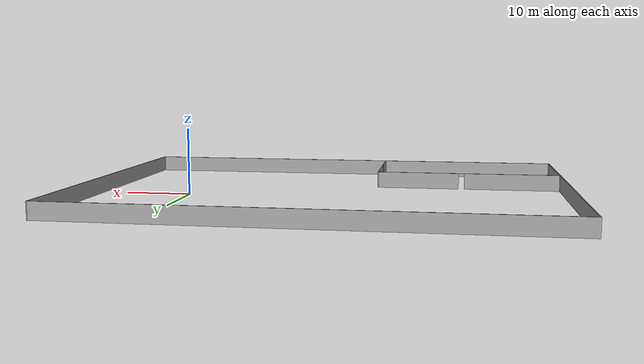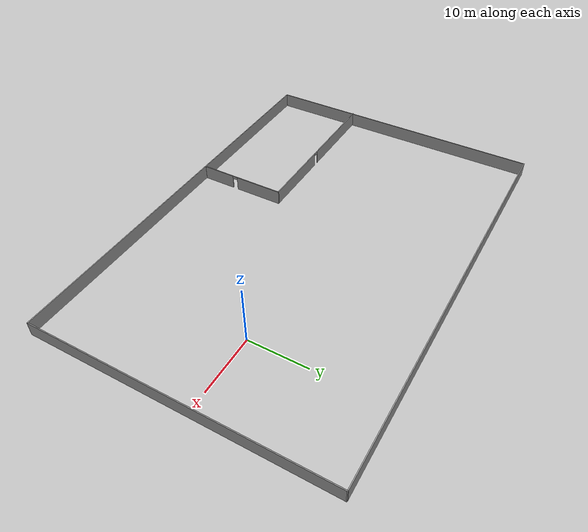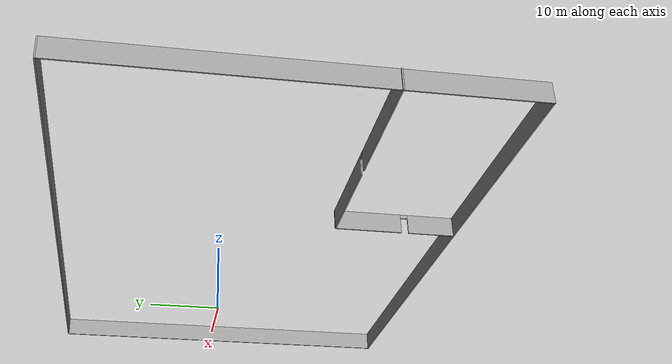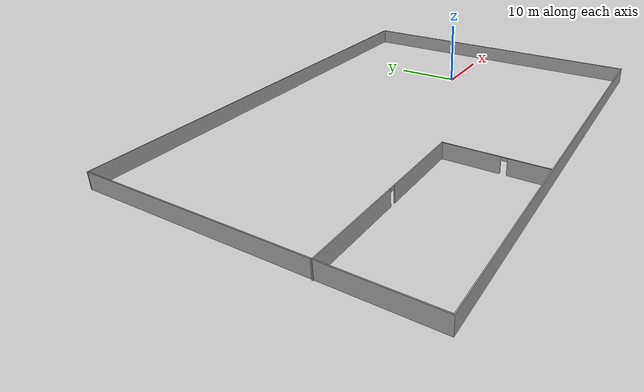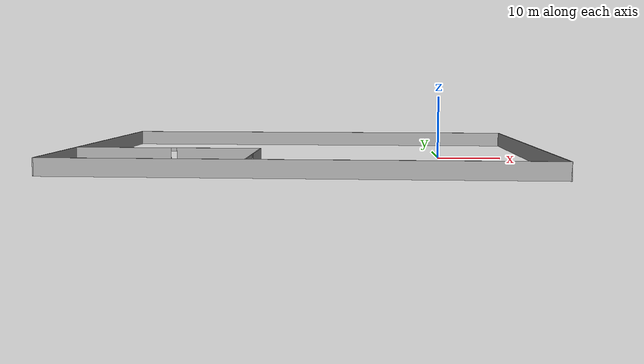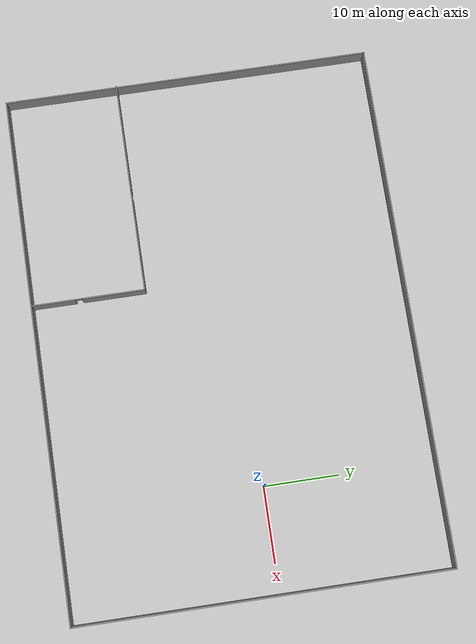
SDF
<?xml version='1.0'?>
<sdf version='1.7'>
  <model name='lab4_turtlebot3'>
    <pose>-21.2274 -2.07484 0 0 -0 0</pose>
    <link name='Wall_0'>
      <collision name='Wall_0_Collision'>
        <geometry>
          <box>
            <size>70.25 0.15 2.5</size>
          </box>
        </geometry>
        <pose>0 0 1.25 0 -0 0</pose>
      </collision>
      <visual name='Wall_0_Visual'>
        <pose>0 0 1.25 0 -0 0</pose>
        <geometry>
          <box>
            <size>70.25 0.15 2.5</size>
          </box>
        </geometry>
        <material>
          <script>
            <uri>file://media/materials/scripts/gazebo.material</uri>
            <name>Gazebo/Grey</name>
          </script>
          <ambient>1 1 1 1</ambient>
        </material>
        <meta>
          <layer>0</layer>
        </meta>
      </visual>
      <pose>0.065721 24.675 0 0 -0 3.14159</pose>
    </link>
    <link name='Wall_1'>
      <collision name='Wall_1_Collision'>
        <geometry>
          <box>
            <size>49.5 0.15 2.5</size>
          </box>
        </geometry>
        <pose>0 0 1.25 0 -0 0</pose>
      </collision>
      <visual name='Wall_1_Visual'>
        <pose>0 0 1.25 0 -0 0</pose>
        <geometry>
          <box>
            <size>49.5 0.15 2.5</size>
          </box>
        </geometry>
        <material>
          <script>
            <uri>file://media/materials/scripts/gazebo.material</uri>
            <name>Gazebo/Grey</name>
          </script>
          <ambient>1 1 1 1</ambient>
        </material>
        <meta>
          <layer>0</layer>
        </meta>
      </visual>
      <pose>-34.9843 -1e-06 0 0 -0 -1.5708</pose>
    </link>
    <link name='Wall_2'>
      <collision name='Wall_2_Collision'>
        <geometry>
          <box>
            <size>70.25 0.15 2.5</size>
          </box>
        </geometry>
        <pose>0 0 1.25 0 -0 0</pose>
      </collision>
      <visual name='Wall_2_Visual'>
        <pose>0 0 1.25 0 -0 0</pose>
        <geometry>
          <box>
            <size>70.25 0.15 2.5</size>
          </box>
        </geometry>
        <material>
          <script>
            <uri>file://media/materials/scripts/gazebo.material</uri>
            <name>Gazebo/Grey</name>
          </script>
          <ambient>1 1 1 1</ambient>
        </material>
        <meta>
          <layer>0</layer>
        </meta>
      </visual>
      <pose>0.065721 -24.675 0 0 -0 0</pose>
    </link>
    <link name='Wall_3'>
      <collision name='Wall_3_Collision'>
        <geometry>
          <box>
            <size>49.5 0.15 2.5</size>
          </box>
        </geometry>
        <pose>0 0 1.25 0 -0 0</pose>
      </collision>
      <visual name='Wall_3_Visual'>
        <pose>0 0 1.25 0 -0 0</pose>
        <geometry>
          <box>
            <size>49.5 0.15 2.5</size>
          </box>
        </geometry>
        <material>
          <script>
            <uri>file://media/materials/scripts/gazebo.material</uri>
            <name>Gazebo/Grey</name>
          </script>
          <ambient>1 1 1 1</ambient>
        </material>
        <meta>
          <layer>0</layer>
        </meta>
      </visual>
      <pose>35.1157 -1e-06 0 0 -0 1.5708</pose>
    </link>
    <link name='Wall_5'>
      <pose>-20.8157 -9.54732 0 0 -0 0</pose>
      <visual name='Wall_5_Visual_0'>
        <pose>-6.88941 0 1.25 0 -0 0</pose>
        <geometry>
          <box>
            <size>14.9712 0.15 2.5</size>
          </box>
        </geometry>
        <material>
          <script>
            <uri>file://media/materials/scripts/gazebo.material</uri>
            <name>Gazebo/Grey</name>
          </script>
          <ambient>1 1 1 1</ambient>
        </material>
        <meta>
          <layer>0</layer>
        </meta>
      </visual>
      <collision name='Wall_5_Collision_0'>
        <geometry>
          <box>
            <size>14.9712 0.15 2.5</size>
          </box>
        </geometry>
        <pose>-6.88941 0 1.25 0 -0 0</pose>
      </collision>
      <visual name='Wall_5_Visual_1'>
        <pose>7.93558 0 1.25 0 -0 0</pose>
        <geometry>
          <box>
            <size>12.8788 0.15 2.5</size>
          </box>
        </geometry>
        <material>
          <script>
            <uri>file://media/materials/scripts/gazebo.material</uri>
            <name>Gazebo/Grey</name>
          </script>
          <ambient>1 1 1 1</ambient>
        </material>
        <meta>
          <layer>0</layer>
        </meta>
      </visual>
      <collision name='Wall_5_Collision_1'>
        <geometry>
          <box>
            <size>12.8788 0.15 2.5</size>
          </box>
        </geometry>
        <pose>7.93558 0 1.25 0 -0 0</pose>
      </collision>
      <visual name='Wall_5_Visual_2'>
        <pose>1.04617 0 2.25 0 -0 0</pose>
        <geometry>
          <box>
            <size>0.9 0.15 0.5</size>
          </box>
        </geometry>
        <material>
          <script>
            <uri>file://media/materials/scripts/gazebo.material</uri>
            <name>Gazebo/Grey</name>
          </script>
          <ambient>1 1 1 1</ambient>
        </material>
        <meta>
          <layer>0</layer>
        </meta>
      </visual>
      <collision name='Wall_5_Collision_2'>
        <geometry>
          <box>
            <size>0.9 0.15 0.5</size>
          </box>
        </geometry>
        <pose>1.04617 0 2.25 0 -0 0</pose>
      </collision>
    </link>
    <link name='Wall_6'>
      <pose>-6.51572 -17.0973 0 0 -0 -1.5708</pose>
      <visual name='Wall_6_Visual_0'>
        <pose>-3.40568 0 1.25 0 -0 0</pose>
        <geometry>
          <box>
            <size>8.43865 0.15 2.5</size>
          </box>
        </geometry>
        <material>
          <script>
            <uri>file://media/materials/scripts/gazebo.material</uri>
            <name>Gazebo/Grey</name>
          </script>
          <ambient>1 1 1 1</ambient>
        </material>
        <meta>
          <layer>0</layer>
        </meta>
      </visual>
      <collision name='Wall_6_Collision_0'>
        <geometry>
          <box>
            <size>8.43865 0.15 2.5</size>
          </box>
        </geometry>
        <pose>-3.40568 0 1.25 0 -0 0</pose>
      </collision>
      <visual name='Wall_6_Visual_1'>
        <pose>4.66932 0 1.25 0 -0 0</pose>
        <geometry>
          <box>
            <size>5.91135 0.15 2.5</size>
          </box>
        </geometry>
        <material>
          <script>
            <uri>file://media/materials/scripts/gazebo.material</uri>
            <name>Gazebo/Grey</name>
          </script>
          <ambient>1 1 1 1</ambient>
        </material>
        <meta>
          <layer>0</layer>
        </meta>
      </visual>
      <collision name='Wall_6_Collision_1'>
        <geometry>
          <box>
            <size>5.91135 0.15 2.5</size>
          </box>
        </geometry>
        <pose>4.66932 0 1.25 0 -0 0</pose>
      </collision>
      <visual name='Wall_6_Visual_2'>
        <pose>1.26365 0 2.25 0 -0 0</pose>
        <geometry>
          <box>
            <size>0.9 0.15 0.5</size>
          </box>
        </geometry>
        <material>
          <script>
            <uri>file://media/materials/scripts/gazebo.material</uri>
            <name>Gazebo/Grey</name>
          </script>
          <ambient>1 1 1 1</ambient>
        </material>
        <meta>
          <layer>0</layer>
        </meta>
      </visual>
      <collision name='Wall_6_Collision_2'>
        <geometry>
          <box>
            <size>0.9 0.15 0.5</size>
          </box>
        </geometry>
        <pose>1.26365 0 2.25 0 -0 0</pose>
      </collision>
    </link>
    <static>1</static>
  </model>
</sdf>
